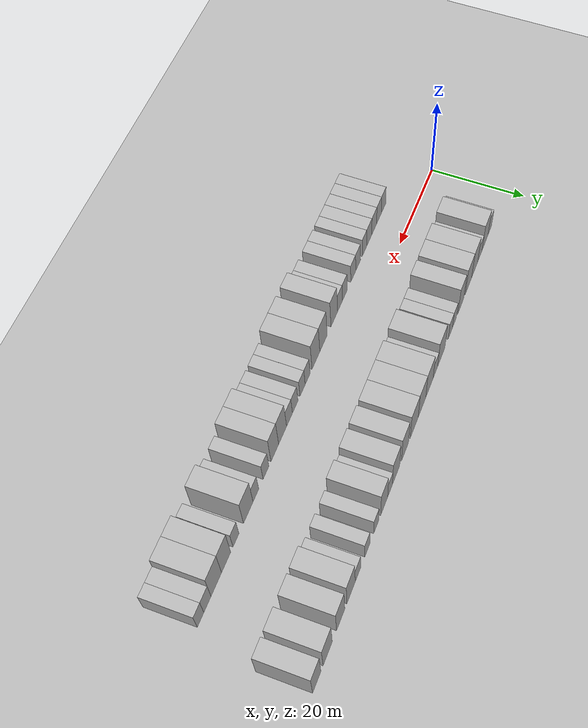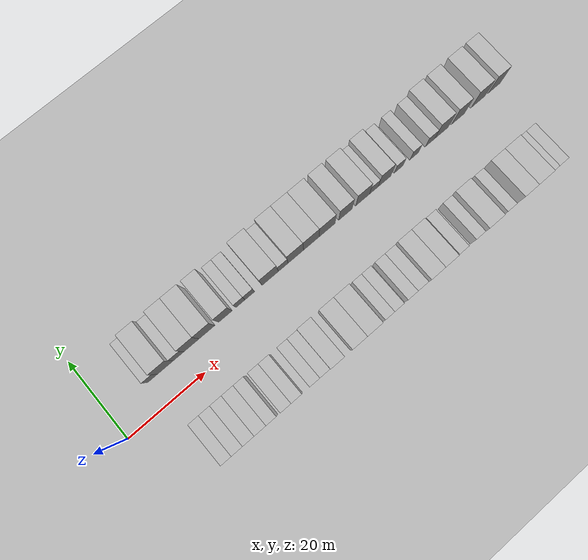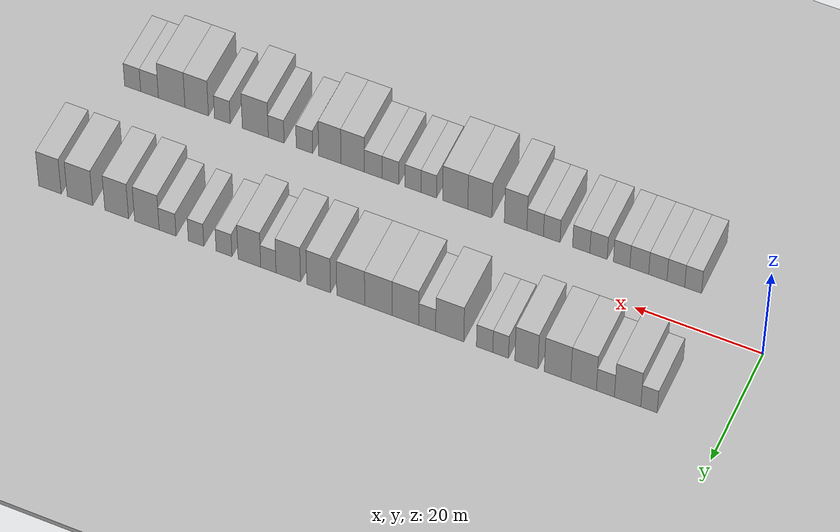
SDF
<sdf version="1.6">
 <world name="default">
  <include><name>ground_plane_1</name><uri>model://HANNAS_ground_plane</uri></include>
  <include>
   <name>ground_plane_2</name>
   <uri>model://HANNAS_ground_plane</uri>
   <pose>100 0 0  0 0 0</pose>
  </include>
  <model name="building_1">
   <static>1</static>
   <pose>11.2626 11.0000 0 0.000000 0.000000 1.570796</pose>
   <link name="link">
    <pose>0 0 3.00 0 0 0</pose>
    <collision name="collision"><geometry><box><size>10.0000 2.5252 6.0000</size></box></geometry></collision>
    <visual name="visual">
     <cast_shadows>0</cast_shadows>
     <geometry><box><size>10.0000 2.5252 6.0000</size></box></geometry>
     <material>
      <script>
       <uri>model://HANNAS_wall/materials/scripts</uri>
       <uri>model://HANNAS_wall/materials/textures</uri>
       <name>vrc/HANNAS_wall</name>
      </script>
     </material>
    </visual>
   </link>
  </model>
  <model name="building_2">
   <static>1</static>
   <pose>14.5752 11.0000 0 0.000000 0.000000 1.570796</pose>
   <link name="link">
    <pose>0 0 4.50 0 0 0</pose>
    <collision name="collision"><geometry><box><size>10.0000 4.1001 9.0000</size></box></geometry></collision>
    <visual name="visual">
     <cast_shadows>0</cast_shadows>
     <geometry><box><size>10.0000 4.1001 9.0000</size></box></geometry>
     <material>
      <script>
       <uri>model://HANNAS_wall/materials/scripts</uri>
       <uri>model://HANNAS_wall/materials/textures</uri>
       <name>vrc/HANNAS_wall</name>
      </script>
     </material>
    </visual>
   </link>
  </model>
  <model name="building_3">
   <static>1</static>
   <pose>18.0243 11.0000 0 0.000000 0.000000 1.570796</pose>
   <link name="link">
    <pose>0 0 3.00 0 0 0</pose>
    <collision name="collision"><geometry><box><size>10.0000 2.7979 6.0000</size></box></geometry></collision>
    <visual name="visual">
     <cast_shadows>0</cast_shadows>
     <geometry><box><size>10.0000 2.7979 6.0000</size></box></geometry>
     <material>
      <script>
       <uri>model://HANNAS_wall/materials/scripts</uri>
       <uri>model://HANNAS_wall/materials/textures</uri>
       <name>vrc/HANNAS_wall</name>
      </script>
     </material>
    </visual>
   </link>
  </model>
  <model name="building_4">
   <static>1</static>
   <pose>21.4172 11.0000 0 0.000000 0.000000 1.570796</pose>
   <link name="link">
    <pose>0 0 4.50 0 0 0</pose>
    <collision name="collision"><geometry><box><size>10.0000 3.9879 9.0000</size></box></geometry></collision>
    <visual name="visual">
     <cast_shadows>0</cast_shadows>
     <geometry><box><size>10.0000 3.9879 9.0000</size></box></geometry>
     <material>
      <script>
       <uri>model://HANNAS_wall/materials/scripts</uri>
       <uri>model://HANNAS_wall/materials/textures</uri>
       <name>vrc/HANNAS_wall</name>
      </script>
     </material>
    </visual>
   </link>
  </model>
  <model name="building_5">
   <static>1</static>
   <pose>25.4855 11.0000 0 0.000000 0.000000 1.570796</pose>
   <link name="link">
    <pose>0 0 4.50 0 0 0</pose>
    <collision name="collision"><geometry><box><size>10.0000 4.1488 9.0000</size></box></geometry></collision>
    <visual name="visual">
     <cast_shadows>0</cast_shadows>
     <geometry><box><size>10.0000 4.1488 9.0000</size></box></geometry>
     <material>
      <script>
       <uri>model://HANNAS_wall/materials/scripts</uri>
       <uri>model://HANNAS_wall/materials/textures</uri>
       <name>vrc/HANNAS_wall</name>
      </script>
     </material>
    </visual>
   </link>
  </model>
  <model name="building_6">
   <static>1</static>
   <pose>30.3708 11.0000 0 0.000000 0.000000 1.570796</pose>
   <link name="link">
    <pose>0 0 4.50 0 0 0</pose>
    <collision name="collision"><geometry><box><size>10.0000 3.6217 9.0000</size></box></geometry></collision>
    <visual name="visual">
     <cast_shadows>0</cast_shadows>
     <geometry><box><size>10.0000 3.6217 9.0000</size></box></geometry>
     <material>
      <script>
       <uri>model://HANNAS_wall/materials/scripts</uri>
       <uri>model://HANNAS_wall/materials/textures</uri>
       <name>vrc/HANNAS_wall</name>
      </script>
     </material>
    </visual>
   </link>
  </model>
  <model name="building_7">
   <static>1</static>
   <pose>34.4124 11.0000 0 0.000000 0.000000 1.570796</pose>
   <link name="link">
    <pose>0 0 3.00 0 0 0</pose>
    <collision name="collision"><geometry><box><size>10.0000 2.4615 6.0000</size></box></geometry></collision>
    <visual name="visual">
     <cast_shadows>0</cast_shadows>
     <geometry><box><size>10.0000 2.4615 6.0000</size></box></geometry>
     <material>
      <script>
       <uri>model://HANNAS_wall/materials/scripts</uri>
       <uri>model://HANNAS_wall/materials/textures</uri>
       <name>vrc/HANNAS_wall</name>
      </script>
     </material>
    </visual>
   </link>
  </model>
  <model name="building_8">
   <static>1</static>
   <pose>36.9330 11.0000 0 0.000000 0.000000 1.570796</pose>
   <link name="link">
    <pose>0 0 3.00 0 0 0</pose>
    <collision name="collision"><geometry><box><size>10.0000 2.5796 6.0000</size></box></geometry></collision>
    <visual name="visual">
     <cast_shadows>0</cast_shadows>
     <geometry><box><size>10.0000 2.5796 6.0000</size></box></geometry>
     <material>
      <script>
       <uri>model://HANNAS_wall/materials/scripts</uri>
       <uri>model://HANNAS_wall/materials/textures</uri>
       <name>vrc/HANNAS_wall</name>
      </script>
     </material>
    </visual>
   </link>
  </model>
  <model name="building_9">
   <static>1</static>
   <pose>42.4474 11.0000 0 0.000000 0.000000 1.570796</pose>
   <link name="link">
    <pose>0 0 4.50 0 0 0</pose>
    <collision name="collision"><geometry><box><size>10.0000 4.4493 9.0000</size></box></geometry></collision>
    <visual name="visual">
     <cast_shadows>0</cast_shadows>
     <geometry><box><size>10.0000 4.4493 9.0000</size></box></geometry>
     <material>
      <script>
       <uri>model://HANNAS_wall/materials/scripts</uri>
       <uri>model://HANNAS_wall/materials/textures</uri>
       <name>vrc/HANNAS_wall</name>
      </script>
     </material>
    </visual>
   </link>
  </model>
  <model name="building_10">
   <static>1</static>
   <pose>46.0073 11.0000 0 0.000000 0.000000 1.570796</pose>
   <link name="link">
    <pose>0 0 3.00 0 0 0</pose>
    <collision name="collision"><geometry><box><size>10.0000 2.6704 6.0000</size></box></geometry></collision>
    <visual name="visual">
     <cast_shadows>0</cast_shadows>
     <geometry><box><size>10.0000 2.6704 6.0000</size></box></geometry>
     <material>
      <script>
       <uri>model://HANNAS_wall/materials/scripts</uri>
       <uri>model://HANNAS_wall/materials/textures</uri>
       <name>vrc/HANNAS_wall</name>
      </script>
     </material>
    </visual>
   </link>
  </model>
  <model name="building_11">
   <static>1</static>
   <pose>49.4722 11.0000 0 0.000000 0.000000 1.570796</pose>
   <link name="link">
    <pose>0 0 4.50 0 0 0</pose>
    <collision name="collision"><geometry><box><size>10.0000 4.2595 9.0000</size></box></geometry></collision>
    <visual name="visual">
     <cast_shadows>0</cast_shadows>
     <geometry><box><size>10.0000 4.2595 9.0000</size></box></geometry>
     <material>
      <script>
       <uri>model://HANNAS_wall/materials/scripts</uri>
       <uri>model://HANNAS_wall/materials/textures</uri>
       <name>vrc/HANNAS_wall</name>
      </script>
     </material>
    </visual>
   </link>
  </model>
  <model name="building_12">
   <static>1</static>
   <pose>53.7757 11.0000 0 0.000000 0.000000 1.570796</pose>
   <link name="link">
    <pose>0 0 4.50 0 0 0</pose>
    <collision name="collision"><geometry><box><size>10.0000 4.3475 9.0000</size></box></geometry></collision>
    <visual name="visual">
     <cast_shadows>0</cast_shadows>
     <geometry><box><size>10.0000 4.3475 9.0000</size></box></geometry>
     <material>
      <script>
       <uri>model://HANNAS_wall/materials/scripts</uri>
       <uri>model://HANNAS_wall/materials/textures</uri>
       <name>vrc/HANNAS_wall</name>
      </script>
     </material>
    </visual>
   </link>
  </model>
  <model name="building_13">
   <static>1</static>
   <pose>58.1860 11.0000 0 0.000000 0.000000 1.570796</pose>
   <link name="link">
    <pose>0 0 4.50 0 0 0</pose>
    <collision name="collision"><geometry><box><size>10.0000 4.4731 9.0000</size></box></geometry></collision>
    <visual name="visual">
     <cast_shadows>0</cast_shadows>
     <geometry><box><size>10.0000 4.4731 9.0000</size></box></geometry>
     <material>
      <script>
       <uri>model://HANNAS_wall/materials/scripts</uri>
       <uri>model://HANNAS_wall/materials/textures</uri>
       <name>vrc/HANNAS_wall</name>
      </script>
     </material>
    </visual>
   </link>
  </model>
  <model name="building_14">
   <static>1</static>
   <pose>63.3259 11.0000 0 0.000000 0.000000 1.570796</pose>
   <link name="link">
    <pose>0 0 4.50 0 0 0</pose>
    <collision name="collision"><geometry><box><size>10.0000 3.8066 9.0000</size></box></geometry></collision>
    <visual name="visual">
     <cast_shadows>0</cast_shadows>
     <geometry><box><size>10.0000 3.8066 9.0000</size></box></geometry>
     <material>
      <script>
       <uri>model://HANNAS_wall/materials/scripts</uri>
       <uri>model://HANNAS_wall/materials/textures</uri>
       <name>vrc/HANNAS_wall</name>
      </script>
     </material>
    </visual>
   </link>
  </model>
  <model name="building_15">
   <static>1</static>
   <pose>68.2018 11.0000 0 0.000000 0.000000 1.570796</pose>
   <link name="link">
    <pose>0 0 4.50 0 0 0</pose>
    <collision name="collision"><geometry><box><size>10.0000 3.9451 9.0000</size></box></geometry></collision>
    <visual name="visual">
     <cast_shadows>0</cast_shadows>
     <geometry><box><size>10.0000 3.9451 9.0000</size></box></geometry>
     <material>
      <script>
       <uri>model://HANNAS_wall/materials/scripts</uri>
       <uri>model://HANNAS_wall/materials/textures</uri>
       <name>vrc/HANNAS_wall</name>
      </script>
     </material>
    </visual>
   </link>
  </model>
  <model name="building_16">
   <static>1</static>
   <pose>71.4081 11.0000 0 0.000000 0.000000 1.570796</pose>
   <link name="link">
    <pose>0 0 3.00 0 0 0</pose>
    <collision name="collision"><geometry><box><size>10.0000 2.4675 6.0000</size></box></geometry></collision>
    <visual name="visual">
     <cast_shadows>0</cast_shadows>
     <geometry><box><size>10.0000 2.4675 6.0000</size></box></geometry>
     <material>
      <script>
       <uri>model://HANNAS_wall/materials/scripts</uri>
       <uri>model://HANNAS_wall/materials/textures</uri>
       <name>vrc/HANNAS_wall</name>
      </script>
     </material>
    </visual>
   </link>
  </model>
  <model name="building_17">
   <static>1</static>
   <pose>74.4741 11.0000 0 0.000000 0.000000 1.570796</pose>
   <link name="link">
    <pose>0 0 4.50 0 0 0</pose>
    <collision name="collision"><geometry><box><size>10.0000 3.6646 9.0000</size></box></geometry></collision>
    <visual name="visual">
     <cast_shadows>0</cast_shadows>
     <geometry><box><size>10.0000 3.6646 9.0000</size></box></geometry>
     <material>
      <script>
       <uri>model://HANNAS_wall/materials/scripts</uri>
       <uri>model://HANNAS_wall/materials/textures</uri>
       <name>vrc/HANNAS_wall</name>
      </script>
     </material>
    </visual>
   </link>
  </model>
  <model name="building_18">
   <static>1</static>
   <pose>78.5879 11.0000 0 0.000000 0.000000 1.570796</pose>
   <link name="link">
    <pose>0 0 3.00 0 0 0</pose>
    <collision name="collision"><geometry><box><size>10.0000 2.5629 6.0000</size></box></geometry></collision>
    <visual name="visual">
     <cast_shadows>0</cast_shadows>
     <geometry><box><size>10.0000 2.5629 6.0000</size></box></geometry>
     <material>
      <script>
       <uri>model://HANNAS_wall/materials/scripts</uri>
       <uri>model://HANNAS_wall/materials/textures</uri>
       <name>vrc/HANNAS_wall</name>
      </script>
     </material>
    </visual>
   </link>
  </model>
  <model name="building_19">
   <static>1</static>
   <pose>83.1306 11.0000 0 0.000000 0.000000 1.570796</pose>
   <link name="link">
    <pose>0 0 3.00 0 0 0</pose>
    <collision name="collision"><geometry><box><size>10.0000 2.5227 6.0000</size></box></geometry></collision>
    <visual name="visual">
     <cast_shadows>0</cast_shadows>
     <geometry><box><size>10.0000 2.5227 6.0000</size></box></geometry>
     <material>
      <script>
       <uri>model://HANNAS_wall/materials/scripts</uri>
       <uri>model://HANNAS_wall/materials/textures</uri>
       <name>vrc/HANNAS_wall</name>
      </script>
     </material>
    </visual>
   </link>
  </model>
  <model name="building_20">
   <static>1</static>
   <pose>87.7749 11.0000 0 0.000000 0.000000 1.570796</pose>
   <link name="link">
    <pose>0 0 3.00 0 0 0</pose>
    <collision name="collision"><geometry><box><size>10.0000 2.7658 6.0000</size></box></geometry></collision>
    <visual name="visual">
     <cast_shadows>0</cast_shadows>
     <geometry><box><size>10.0000 2.7658 6.0000</size></box></geometry>
     <material>
      <script>
       <uri>model://HANNAS_wall/materials/scripts</uri>
       <uri>model://HANNAS_wall/materials/textures</uri>
       <name>vrc/HANNAS_wall</name>
      </script>
     </material>
    </visual>
   </link>
  </model>
  <model name="building_21">
   <static>1</static>
   <pose>91.1590 11.0000 0 0.000000 0.000000 1.570796</pose>
   <link name="link">
    <pose>0 0 4.50 0 0 0</pose>
    <collision name="collision"><geometry><box><size>10.0000 4.0024 9.0000</size></box></geometry></collision>
    <visual name="visual">
     <cast_shadows>0</cast_shadows>
     <geometry><box><size>10.0000 4.0024 9.0000</size></box></geometry>
     <material>
      <script>
       <uri>model://HANNAS_wall/materials/scripts</uri>
       <uri>model://HANNAS_wall/materials/textures</uri>
       <name>vrc/HANNAS_wall</name>
      </script>
     </material>
    </visual>
   </link>
  </model>
  <model name="building_22">
   <static>1</static>
   <pose>96.1032 11.0000 0 0.000000 0.000000 1.570796</pose>
   <link name="link">
    <pose>0 0 4.50 0 0 0</pose>
    <collision name="collision"><geometry><box><size>10.0000 3.8859 9.0000</size></box></geometry></collision>
    <visual name="visual">
     <cast_shadows>0</cast_shadows>
     <geometry><box><size>10.0000 3.8859 9.0000</size></box></geometry>
     <material>
      <script>
       <uri>model://HANNAS_wall/materials/scripts</uri>
       <uri>model://HANNAS_wall/materials/textures</uri>
       <name>vrc/HANNAS_wall</name>
      </script>
     </material>
    </visual>
   </link>
  </model>
  <model name="building_23">
   <static>1</static>
   <pose>102.1440 11.0000 0 0.000000 0.000000 1.570796</pose>
   <link name="link">
    <pose>0 0 4.50 0 0 0</pose>
    <collision name="collision"><geometry><box><size>10.0000 4.1956 9.0000</size></box></geometry></collision>
    <visual name="visual">
     <cast_shadows>0</cast_shadows>
     <geometry><box><size>10.0000 4.1956 9.0000</size></box></geometry>
     <material>
      <script>
       <uri>model://HANNAS_wall/materials/scripts</uri>
       <uri>model://HANNAS_wall/materials/textures</uri>
       <name>vrc/HANNAS_wall</name>
      </script>
     </material>
    </visual>
   </link>
  </model>
  <model name="building_24">
   <static>1</static>
   <pose>107.0892 11.0000 0 0.000000 0.000000 1.570796</pose>
   <link name="link">
    <pose>0 0 4.50 0 0 0</pose>
    <collision name="collision"><geometry><box><size>10.0000 3.6947 9.0000</size></box></geometry></collision>
    <visual name="visual">
     <cast_shadows>0</cast_shadows>
     <geometry><box><size>10.0000 3.6947 9.0000</size></box></geometry>
     <material>
      <script>
       <uri>model://HANNAS_wall/materials/scripts</uri>
       <uri>model://HANNAS_wall/materials/textures</uri>
       <name>vrc/HANNAS_wall</name>
      </script>
     </material>
    </visual>
   </link>
  </model>
  <model name="building_50">
   <static>1</static>
   <pose>13.3277 -11.0000 0 0.000000 0.000000 1.570796</pose>
   <link name="link">
    <pose>0 0 3.00 0 0 0</pose>
    <collision name="collision"><geometry><box><size>10.0000 2.6553 6.0000</size></box></geometry></collision>
    <visual name="visual">
     <cast_shadows>0</cast_shadows>
     <geometry><box><size>10.0000 2.6553 6.0000</size></box></geometry>
     <material>
      <script>
       <uri>model://HANNAS_wall/materials/scripts</uri>
       <uri>model://HANNAS_wall/materials/textures</uri>
       <name>vrc/HANNAS_wall</name>
      </script>
     </material>
    </visual>
   </link>
  </model>
  <model name="building_51">
   <static>1</static>
   <pose>16.0517 -11.0000 0 0.000000 0.000000 1.570796</pose>
   <link name="link">
    <pose>0 0 3.00 0 0 0</pose>
    <collision name="collision"><geometry><box><size>10.0000 2.7927 6.0000</size></box></geometry></collision>
    <visual name="visual">
     <cast_shadows>0</cast_shadows>
     <geometry><box><size>10.0000 2.7927 6.0000</size></box></geometry>
     <material>
      <script>
       <uri>model://HANNAS_wall/materials/scripts</uri>
       <uri>model://HANNAS_wall/materials/textures</uri>
       <name>vrc/HANNAS_wall</name>
      </script>
     </material>
    </visual>
   </link>
  </model>
  <model name="building_52">
   <static>1</static>
   <pose>18.8957 -11.0000 0 0.000000 0.000000 1.570796</pose>
   <link name="link">
    <pose>0 0 3.00 0 0 0</pose>
    <collision name="collision"><geometry><box><size>10.0000 2.8953 6.0000</size></box></geometry></collision>
    <visual name="visual">
     <cast_shadows>0</cast_shadows>
     <geometry><box><size>10.0000 2.8953 6.0000</size></box></geometry>
     <material>
      <script>
       <uri>model://HANNAS_wall/materials/scripts</uri>
       <uri>model://HANNAS_wall/materials/textures</uri>
       <name>vrc/HANNAS_wall</name>
      </script>
     </material>
    </visual>
   </link>
  </model>
  <model name="building_53">
   <static>1</static>
   <pose>21.8274 -11.0000 0 0.000000 0.000000 1.570796</pose>
   <link name="link">
    <pose>0 0 3.00 0 0 0</pose>
    <collision name="collision"><geometry><box><size>10.0000 2.9682 6.0000</size></box></geometry></collision>
    <visual name="visual">
     <cast_shadows>0</cast_shadows>
     <geometry><box><size>10.0000 2.9682 6.0000</size></box></geometry>
     <material>
      <script>
       <uri>model://HANNAS_wall/materials/scripts</uri>
       <uri>model://HANNAS_wall/materials/textures</uri>
       <name>vrc/HANNAS_wall</name>
      </script>
     </material>
    </visual>
   </link>
  </model>
  <model name="building_54">
   <static>1</static>
   <pose>24.6127 -11.0000 0 0.000000 0.000000 1.570796</pose>
   <link name="link">
    <pose>0 0 3.00 0 0 0</pose>
    <collision name="collision"><geometry><box><size>10.0000 2.6025 6.0000</size></box></geometry></collision>
    <visual name="visual">
     <cast_shadows>0</cast_shadows>
     <geometry><box><size>10.0000 2.6025 6.0000</size></box></geometry>
     <material>
      <script>
       <uri>model://HANNAS_wall/materials/scripts</uri>
       <uri>model://HANNAS_wall/materials/textures</uri>
       <name>vrc/HANNAS_wall</name>
      </script>
     </material>
    </visual>
   </link>
  </model>
  <model name="building_55">
   <static>1</static>
   <pose>28.2843 -11.0000 0 0.000000 0.000000 1.570796</pose>
   <link name="link">
    <pose>0 0 3.00 0 0 0</pose>
    <collision name="collision"><geometry><box><size>10.0000 2.7407 6.0000</size></box></geometry></collision>
    <visual name="visual">
     <cast_shadows>0</cast_shadows>
     <geometry><box><size>10.0000 2.7407 6.0000</size></box></geometry>
     <material>
      <script>
       <uri>model://HANNAS_wall/materials/scripts</uri>
       <uri>model://HANNAS_wall/materials/textures</uri>
       <name>vrc/HANNAS_wall</name>
      </script>
     </material>
    </visual>
   </link>
  </model>
  <model name="building_56">
   <static>1</static>
   <pose>31.0328 -11.0000 0 0.000000 0.000000 1.570796</pose>
   <link name="link">
    <pose>0 0 3.00 0 0 0</pose>
    <collision name="collision"><geometry><box><size>10.0000 2.7564 6.0000</size></box></geometry></collision>
    <visual name="visual">
     <cast_shadows>0</cast_shadows>
     <geometry><box><size>10.0000 2.7564 6.0000</size></box></geometry>
     <material>
      <script>
       <uri>model://HANNAS_wall/materials/scripts</uri>
       <uri>model://HANNAS_wall/materials/textures</uri>
       <name>vrc/HANNAS_wall</name>
      </script>
     </material>
    </visual>
   </link>
  </model>
  <model name="building_57">
   <static>1</static>
   <pose>35.7316 -11.0000 0 0.000000 0.000000 1.570796</pose>
   <link name="link">
    <pose>0 0 3.00 0 0 0</pose>
    <collision name="collision"><geometry><box><size>10.0000 2.6412 6.0000</size></box></geometry></collision>
    <visual name="visual">
     <cast_shadows>0</cast_shadows>
     <geometry><box><size>10.0000 2.6412 6.0000</size></box></geometry>
     <material>
      <script>
       <uri>model://HANNAS_wall/materials/scripts</uri>
       <uri>model://HANNAS_wall/materials/textures</uri>
       <name>vrc/HANNAS_wall</name>
      </script>
     </material>
    </visual>
   </link>
  </model>
  <model name="building_58">
   <static>1</static>
   <pose>38.3805 -11.0000 0 0.000000 0.000000 1.570796</pose>
   <link name="link">
    <pose>0 0 3.00 0 0 0</pose>
    <collision name="collision"><geometry><box><size>10.0000 2.6566 6.0000</size></box></geometry></collision>
    <visual name="visual">
     <cast_shadows>0</cast_shadows>
     <geometry><box><size>10.0000 2.6566 6.0000</size></box></geometry>
     <material>
      <script>
       <uri>model://HANNAS_wall/materials/scripts</uri>
       <uri>model://HANNAS_wall/materials/textures</uri>
       <name>vrc/HANNAS_wall</name>
      </script>
     </material>
    </visual>
   </link>
  </model>
  <model name="building_59">
   <static>1</static>
   <pose>41.5148 -11.0000 0 0.000000 0.000000 1.570796</pose>
   <link name="link">
    <pose>0 0 4.50 0 0 0</pose>
    <collision name="collision"><geometry><box><size>10.0000 3.6121 9.0000</size></box></geometry></collision>
    <visual name="visual">
     <cast_shadows>0</cast_shadows>
     <geometry><box><size>10.0000 3.6121 9.0000</size></box></geometry>
     <material>
      <script>
       <uri>model://HANNAS_wall/materials/scripts</uri>
       <uri>model://HANNAS_wall/materials/textures</uri>
       <name>vrc/HANNAS_wall</name>
      </script>
     </material>
    </visual>
   </link>
  </model>
  <model name="building_60">
   <static>1</static>
   <pose>47.2590 -11.0000 0 0.000000 0.000000 1.570796</pose>
   <link name="link">
    <pose>0 0 4.50 0 0 0</pose>
    <collision name="collision"><geometry><box><size>10.0000 3.8763 9.0000</size></box></geometry></collision>
    <visual name="visual">
     <cast_shadows>0</cast_shadows>
     <geometry><box><size>10.0000 3.8763 9.0000</size></box></geometry>
     <material>
      <script>
       <uri>model://HANNAS_wall/materials/scripts</uri>
       <uri>model://HANNAS_wall/materials/textures</uri>
       <name>vrc/HANNAS_wall</name>
      </script>
     </material>
    </visual>
   </link>
  </model>
  <model name="building_61">
   <static>1</static>
   <pose>51.2214 -11.0000 0 0.000000 0.000000 1.570796</pose>
   <link name="link">
    <pose>0 0 4.50 0 0 0</pose>
    <collision name="collision"><geometry><box><size>10.0000 4.0485 9.0000</size></box></geometry></collision>
    <visual name="visual">
     <cast_shadows>0</cast_shadows>
     <geometry><box><size>10.0000 4.0485 9.0000</size></box></geometry>
     <material>
      <script>
       <uri>model://HANNAS_wall/materials/scripts</uri>
       <uri>model://HANNAS_wall/materials/textures</uri>
       <name>vrc/HANNAS_wall</name>
      </script>
     </material>
    </visual>
   </link>
  </model>
  <model name="building_62">
   <static>1</static>
   <pose>55.5011 -11.0000 0 0.000000 0.000000 1.570796</pose>
   <link name="link">
    <pose>0 0 3.00 0 0 0</pose>
    <collision name="collision"><geometry><box><size>10.0000 2.5110 6.0000</size></box></geometry></collision>
    <visual name="visual">
     <cast_shadows>0</cast_shadows>
     <geometry><box><size>10.0000 2.5110 6.0000</size></box></geometry>
     <material>
      <script>
       <uri>model://HANNAS_wall/materials/scripts</uri>
       <uri>model://HANNAS_wall/materials/textures</uri>
       <name>vrc/HANNAS_wall</name>
      </script>
     </material>
    </visual>
   </link>
  </model>
  <model name="building_63">
   <static>1</static>
   <pose>58.0492 -11.0000 0 0.000000 0.000000 1.570796</pose>
   <link name="link">
    <pose>0 0 3.00 0 0 0</pose>
    <collision name="collision"><geometry><box><size>10.0000 2.5851 6.0000</size></box></geometry></collision>
    <visual name="visual">
     <cast_shadows>0</cast_shadows>
     <geometry><box><size>10.0000 2.5851 6.0000</size></box></geometry>
     <material>
      <script>
       <uri>model://HANNAS_wall/materials/scripts</uri>
       <uri>model://HANNAS_wall/materials/textures</uri>
       <name>vrc/HANNAS_wall</name>
      </script>
     </material>
    </visual>
   </link>
  </model>
  <model name="building_64">
   <static>1</static>
   <pose>61.7106 -11.0000 0 0.000000 0.000000 1.570796</pose>
   <link name="link">
    <pose>0 0 3.00 0 0 0</pose>
    <collision name="collision"><geometry><box><size>10.0000 2.7378 6.0000</size></box></geometry></collision>
    <visual name="visual">
     <cast_shadows>0</cast_shadows>
     <geometry><box><size>10.0000 2.7378 6.0000</size></box></geometry>
     <material>
      <script>
       <uri>model://HANNAS_wall/materials/scripts</uri>
       <uri>model://HANNAS_wall/materials/textures</uri>
       <name>vrc/HANNAS_wall</name>
      </script>
     </material>
    </visual>
   </link>
  </model>
  <model name="building_65">
   <static>1</static>
   <pose>64.5161 -11.0000 0 0.000000 0.000000 1.570796</pose>
   <link name="link">
    <pose>0 0 3.00 0 0 0</pose>
    <collision name="collision"><geometry><box><size>10.0000 2.8732 6.0000</size></box></geometry></collision>
    <visual name="visual">
     <cast_shadows>0</cast_shadows>
     <geometry><box><size>10.0000 2.8732 6.0000</size></box></geometry>
     <material>
      <script>
       <uri>model://HANNAS_wall/materials/scripts</uri>
       <uri>model://HANNAS_wall/materials/textures</uri>
       <name>vrc/HANNAS_wall</name>
      </script>
     </material>
    </visual>
   </link>
  </model>
  <model name="building_66">
   <static>1</static>
   <pose>67.8580 -11.0000 0 0.000000 0.000000 1.570796</pose>
   <link name="link">
    <pose>0 0 4.50 0 0 0</pose>
    <collision name="collision"><geometry><box><size>10.0000 3.8107 9.0000</size></box></geometry></collision>
    <visual name="visual">
     <cast_shadows>0</cast_shadows>
     <geometry><box><size>10.0000 3.8107 9.0000</size></box></geometry>
     <material>
      <script>
       <uri>model://HANNAS_wall/materials/scripts</uri>
       <uri>model://HANNAS_wall/materials/textures</uri>
       <name>vrc/HANNAS_wall</name>
      </script>
     </material>
    </visual>
   </link>
  </model>
  <model name="building_67">
   <static>1</static>
   <pose>71.5816 -11.0000 0 0.000000 0.000000 1.570796</pose>
   <link name="link">
    <pose>0 0 4.50 0 0 0</pose>
    <collision name="collision"><geometry><box><size>10.0000 3.6365 9.0000</size></box></geometry></collision>
    <visual name="visual">
     <cast_shadows>0</cast_shadows>
     <geometry><box><size>10.0000 3.6365 9.0000</size></box></geometry>
     <material>
      <script>
       <uri>model://HANNAS_wall/materials/scripts</uri>
       <uri>model://HANNAS_wall/materials/textures</uri>
       <name>vrc/HANNAS_wall</name>
      </script>
     </material>
    </visual>
   </link>
  </model>
  <model name="building_68">
   <static>1</static>
   <pose>75.7462 -11.0000 0 0.000000 0.000000 1.570796</pose>
   <link name="link">
    <pose>0 0 3.00 0 0 0</pose>
    <collision name="collision"><geometry><box><size>10.0000 2.6926 6.0000</size></box></geometry></collision>
    <visual name="visual">
     <cast_shadows>0</cast_shadows>
     <geometry><box><size>10.0000 2.6926 6.0000</size></box></geometry>
     <material>
      <script>
       <uri>model://HANNAS_wall/materials/scripts</uri>
       <uri>model://HANNAS_wall/materials/textures</uri>
       <name>vrc/HANNAS_wall</name>
      </script>
     </material>
    </visual>
   </link>
  </model>
  <model name="building_69">
   <static>1</static>
   <pose>80.3934 -11.0000 0 0.000000 0.000000 1.570796</pose>
   <link name="link">
    <pose>0 0 3.00 0 0 0</pose>
    <collision name="collision"><geometry><box><size>10.0000 2.6019 6.0000</size></box></geometry></collision>
    <visual name="visual">
     <cast_shadows>0</cast_shadows>
     <geometry><box><size>10.0000 2.6019 6.0000</size></box></geometry>
     <material>
      <script>
       <uri>model://HANNAS_wall/materials/scripts</uri>
       <uri>model://HANNAS_wall/materials/textures</uri>
       <name>vrc/HANNAS_wall</name>
      </script>
     </material>
    </visual>
   </link>
  </model>
  <model name="building_70">
   <static>1</static>
   <pose>83.8325 -11.0000 0 0.000000 0.000000 1.570796</pose>
   <link name="link">
    <pose>0 0 4.50 0 0 0</pose>
    <collision name="collision"><geometry><box><size>10.0000 4.2763 9.0000</size></box></geometry></collision>
    <visual name="visual">
     <cast_shadows>0</cast_shadows>
     <geometry><box><size>10.0000 4.2763 9.0000</size></box></geometry>
     <material>
      <script>
       <uri>model://HANNAS_wall/materials/scripts</uri>
       <uri>model://HANNAS_wall/materials/textures</uri>
       <name>vrc/HANNAS_wall</name>
      </script>
     </material>
    </visual>
   </link>
  </model>
  <model name="building_71">
   <static>1</static>
   <pose>89.2731 -11.0000 0 0.000000 0.000000 1.570796</pose>
   <link name="link">
    <pose>0 0 3.00 0 0 0</pose>
    <collision name="collision"><geometry><box><size>10.0000 2.6048 6.0000</size></box></geometry></collision>
    <visual name="visual">
     <cast_shadows>0</cast_shadows>
     <geometry><box><size>10.0000 2.6048 6.0000</size></box></geometry>
     <material>
      <script>
       <uri>model://HANNAS_wall/materials/scripts</uri>
       <uri>model://HANNAS_wall/materials/textures</uri>
       <name>vrc/HANNAS_wall</name>
      </script>
     </material>
    </visual>
   </link>
  </model>
  <model name="building_72">
   <static>1</static>
   <pose>93.5231 -11.0000 0 0.000000 0.000000 1.570796</pose>
   <link name="link">
    <pose>0 0 4.50 0 0 0</pose>
    <collision name="collision"><geometry><box><size>10.0000 3.8951 9.0000</size></box></geometry></collision>
    <visual name="visual">
     <cast_shadows>0</cast_shadows>
     <geometry><box><size>10.0000 3.8951 9.0000</size></box></geometry>
     <material>
      <script>
       <uri>model://HANNAS_wall/materials/scripts</uri>
       <uri>model://HANNAS_wall/materials/textures</uri>
       <name>vrc/HANNAS_wall</name>
      </script>
     </material>
    </visual>
   </link>
  </model>
  <model name="building_73">
   <static>1</static>
   <pose>97.6893 -11.0000 0 0.000000 0.000000 1.570796</pose>
   <link name="link">
    <pose>0 0 4.50 0 0 0</pose>
    <collision name="collision"><geometry><box><size>10.0000 4.4373 9.0000</size></box></geometry></collision>
    <visual name="visual">
     <cast_shadows>0</cast_shadows>
     <geometry><box><size>10.0000 4.4373 9.0000</size></box></geometry>
     <material>
      <script>
       <uri>model://HANNAS_wall/materials/scripts</uri>
       <uri>model://HANNAS_wall/materials/textures</uri>
       <name>vrc/HANNAS_wall</name>
      </script>
     </material>
    </visual>
   </link>
  </model>
  <model name="building_74">
   <static>1</static>
   <pose>101.3851 -11.0000 0 0.000000 0.000000 1.570796</pose>
   <link name="link">
    <pose>0 0 3.00 0 0 0</pose>
    <collision name="collision"><geometry><box><size>10.0000 2.9545 6.0000</size></box></geometry></collision>
    <visual name="visual">
     <cast_shadows>0</cast_shadows>
     <geometry><box><size>10.0000 2.9545 6.0000</size></box></geometry>
     <material>
      <script>
       <uri>model://HANNAS_wall/materials/scripts</uri>
       <uri>model://HANNAS_wall/materials/textures</uri>
       <name>vrc/HANNAS_wall</name>
      </script>
     </material>
    </visual>
   </link>
  </model>
  <model name="building_75">
   <static>1</static>
   <pose>104.1999 -11.0000 0 0.000000 0.000000 1.570796</pose>
   <link name="link">
    <pose>0 0 3.00 0 0 0</pose>
    <collision name="collision"><geometry><box><size>10.0000 2.6749 6.0000</size></box></geometry></collision>
    <visual name="visual">
     <cast_shadows>0</cast_shadows>
     <geometry><box><size>10.0000 2.6749 6.0000</size></box></geometry>
     <material>
      <script>
       <uri>model://HANNAS_wall/materials/scripts</uri>
       <uri>model://HANNAS_wall/materials/textures</uri>
       <name>vrc/HANNAS_wall</name>
      </script>
     </material>
    </visual>
   </link>
  </model>
 </world>
</sdf>
